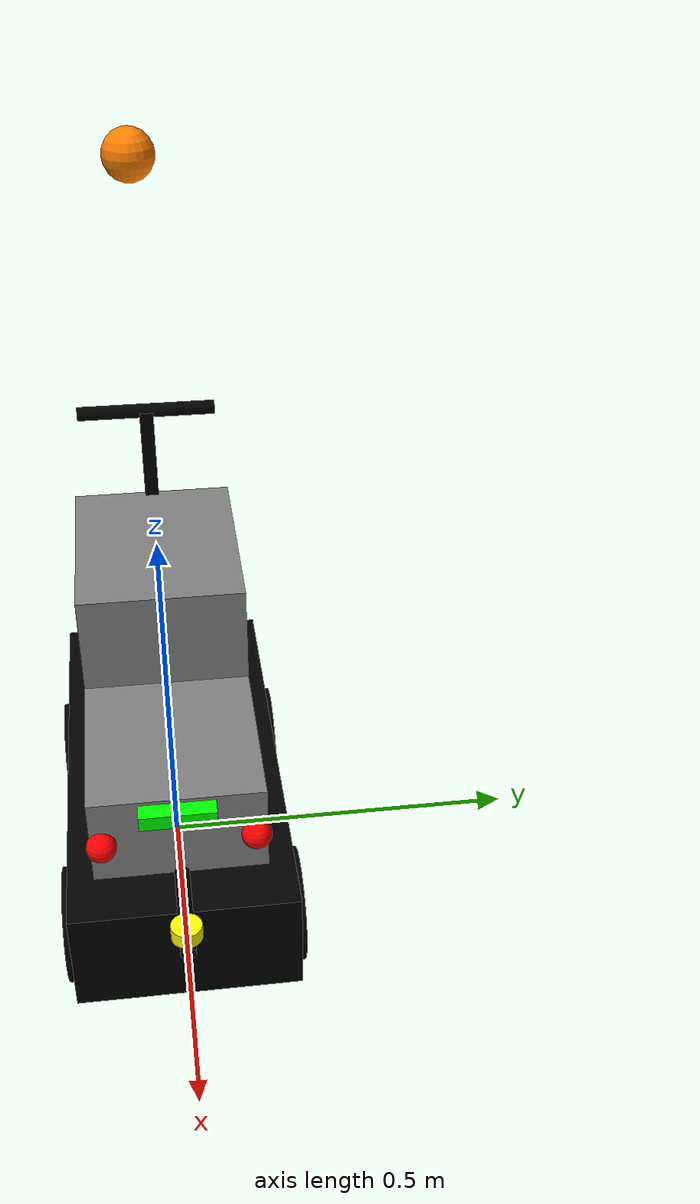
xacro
<?xml version="1.0"?>
<robot name="simple_car" xmlns:xacro="http://www.ros.org/wiki/xacro">

  <!-- 색상 -->
  <material name="red">
    <color rgba="1 0 0 1"/>
  </material>
  <material name="green">
    <color rgba="0 1 0 1"/>
  </material>
  <material name="blue">
    <color rgba="0 0 1 1"/>
  </material>
  <material name="black">
    <color rgba="0 0 0 1"/>
  </material>
  <material name="gray">
    <color rgba="0.5 0.5 0.5 1"/>
  </material>
  <material name="white">
    <color rgba="1 1 1 1"/>
  </material>
  <material name="yellow">
    <color rgba="1 1 0 1"/>
  </material>
  <material name="orange">
    <color rgba="1 0.5 0 1"/>
  </material>

  <!-- 바퀴 매크로 -->
  <xacro:macro name="wheel" params="name xyz">
    <link name="${name}">
      <visual>
        <origin xyz="0 0 0" rpy="1.5708 0 0"/>
        <geometry>
          <cylinder radius="0.08" length="0.05"/>
        </geometry>
        <material name="black"/>
      </visual>
    </link>
    <joint name="${name}_joint" type="fixed">
      <parent link="base_link"/>
      <child link="${name}"/>
      <origin xyz="${xyz}" rpy="0 0 0"/>
    </joint>
  </xacro:macro>

  <!-- 차체  -->
  <link name="base_link">
    <visual>
      <origin xyz="0 0 0.075" rpy="0 0 0"/>
      <geometry>
        <box size="0.65 0.3 0.15"/>
      </geometry>
      <material name="black"/>
    </visual>
  </link>

  <!-- 앞 부분 프로파일 직육면체  -->
  <link name="front_bumper">
    <visual>
      <origin xyz="-0.2 0 0.15" rpy="0 0 0"/>
      <geometry>
        <box size="0.27 0.23 0.15"/>
      </geometry>
      <material name="gray"/>
    </visual>
  </link>
  <joint name="front_bumper_joint" type="fixed">
    <parent link="base_link"/>
    <child link="front_bumper"/>
    <origin xyz="0.315 0 0.05" rpy="0 0 0"/>
  </joint>

<!-- 라이다 받침 프로파일 직육면체 -->
<link name="lidar_horizontal">
  <visual>
    <origin xyz="0 0 0.06" rpy="0 1.5708 0"/>
    <geometry>
      <cylinder length="0.16" radius="0.01"/>
    </geometry>
    <material name="black"/>
  </visual>
</link>

<joint name="lidar_horizontal_joint" type="fixed">
  <parent link="front_bumper"/>
  <child link="lidar_horizontal"/>
  <origin xyz="0 0 0.04" rpy="0 0 0"/>
</joint>

<!-- 2D Lidar(노랑) -->
<link name="sensor_tip">
  <visual>
    <origin xyz="0.06 0 -0.02" rpy="0 0 0"/>
    <geometry>
      <cylinder radius="0.02" length="0.02"/>
    </geometry>
    <material name="yellow"/>
  </visual>
</link>

<joint name="sensor_tip_joint" type="fixed">
	<parent link="lidar_horizontal"/>
  <child link="sensor_tip"/>
  <origin xyz="0 0 0.1" rpy="0 0 0"/>
</joint>

<!-- Laser frame for Lidar -->
<link name="laser"/>
<joint name="laser_joint" type="fixed">
	<parent link="base_link"/>
	<child link="laser"/>
	<origin xyz="1.0 0 0" rpy="0 0 3.14"/>
</joint>

 <!--  뒷 부분 프로파일 직육면체 -->
<link name="rear_box">
  <visual>
    <origin xyz="0 0 0.05" rpy="0 0 0"/>
    <geometry>
      <box size="0.3 0.23 0.33"/>
    </geometry>
    <material name="gray"/>
  </visual>
</link>
<joint name="rear_box_joint" type="fixed">
  <parent link="base_link"/>
  <child link="rear_box"/>
  <origin xyz="-0.15 0 0.20" rpy="0 0 0"/>
</joint>

<!-- 손잡이 수직 프로파일 -->
<link name="handle_vertical">
  <visual>
    <origin xyz="-0.15 0 0.04" rpy="0 0 0"/>
    <geometry>
      <box size="0.02 0.02 0.4"/>
    </geometry>
    <material name="black"/>
  </visual>
</link>
<joint name="handle_vertical_joint" type="fixed">
  <parent link="rear_box"/>
  <child link="handle_vertical"/>
  <origin xyz="0 0 0.11" rpy="0 0 0"/>
</joint>

<!-- 손잡이  -->
<link name="handle_horizontal">
  <visual>
    <origin xyz="-0.15 0 0.2" rpy="1.5708 0 0"/>
    <geometry>
      <cylinder length="0.2" radius="0.01"/>
    </geometry>
    <material name="black"/>
  </visual>
</link>

<joint name="handle_horizontal_joint" type="fixed">
  <parent link="handle_vertical"/>
  <child link="handle_horizontal"/>
  <origin xyz="0 0 0.04" rpy="0 0 0"/>
</joint>

<!-- Mono Camera 2개(빨강) -->

<link name="front_bumper_ball_left">
  <visual>
    <origin xyz="-0.06 0.1 0.16" rpy="0 0 0"/>
    <geometry>
      <sphere radius="0.02"/>
    </geometry>
    <material name="red"/>
  </visual>
</link>
<joint name="front_bumper_ball_left_joint" type="fixed">
  <parent link="front_bumper"/>
  <child link="front_bumper_ball_left"/>
  <origin xyz="0 0 0" rpy="0 0 0"/>
</joint>

<link name="front_bumper_ball_right">
  <visual>
    <origin xyz="-0.06 -0.1 0.16" rpy="0 0 0"/>
    <geometry>
      <sphere radius="0.02"/>
    </geometry>
    <material name="red"/>
  </visual>
</link>
<joint name="front_bumper_ball_right_joint" type="fixed">
  <parent link="front_bumper"/>
  <child link="front_bumper_ball_right"/>
  <origin xyz="0 0 0" rpy="0 0 0"/>
</joint>

<!-- Depth Camera(초록)-->
<link name="front_bumper_top_box">
  <visual>
    <origin xyz="-0.06 0 0.21" rpy="0 0 0"/>
    <geometry>
      <box size="0.04 0.1 0.02"/>
    </geometry>
    <material name="green"/>
  </visual>
</link>
<joint name="front_bumper_top_box_joint" type="fixed">
  <parent link="front_bumper"/>
  <child link="front_bumper_top_box"/>
  <origin xyz="0 0 0" rpy="0 0 0"/>
</joint>

<!--Encoder-->
<link name="encoder">
</link>
<joint name="encoder_joint" type="fixed">
  <parent link="base_link"/>
  <child link ="encoder"/>
  <origin xyz="0.18 0 0" rpy="0 0 0"/>
</joint>

<!--imu-->
<link name="imu">
</link>
<joint name="imu_joint" type="fixed">
  <parent link="base_link"/>
  <child link ="imu"/>
  <origin xyz="-0.2 0 0" rpy="0 0 0"/>
</joint>

<!-- GPS -->
<link name="gps">
  <visual>
    <origin xyz="0 0 0" rpy="0 0 0"/>
    <geometry>
      <sphere radius="0.03"/> <!-- GPS 안테나처럼 작은 구 모양 -->
    </geometry>
    <material name="orange"/> <!-- 눈에 띄게 오렌지색 -->
  </visual>
</link>

<joint name="gps_joint" type="fixed">
  <parent link="base_link"/>
  <child link="gps"/>
  <origin xyz="0 0 1" rpy="0 0 0"/> <!-- 차체 위쪽, 살짝 앞쪽 -->
</joint>

  <!-- 바퀴 4개 -->
  <xacro:wheel name="wheel_fl" xyz=" 0.18  0.14 0.0"/>
  <xacro:wheel name="wheel_fr" xyz=" 0.18 -0.14 0.0"/>
  <xacro:wheel name="wheel_rl" xyz="-0.2  0.14 0.0"/>
  <xacro:wheel name="wheel_rr" xyz="-0.2 -0.14 0.0"/>

</robot>
